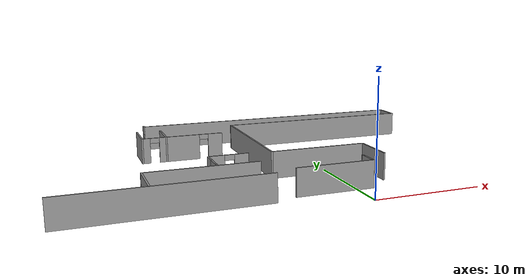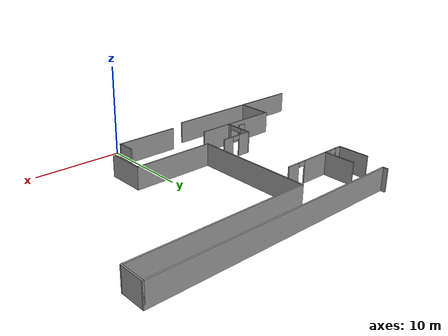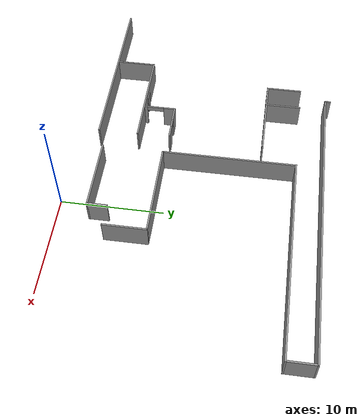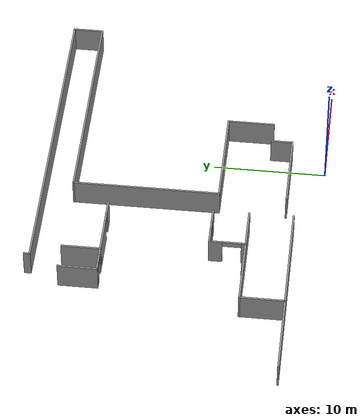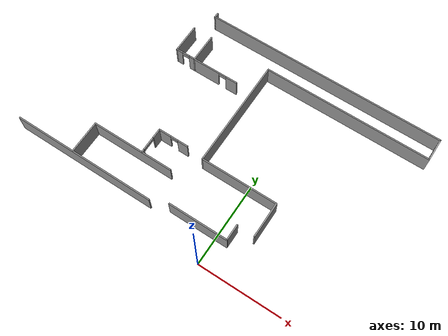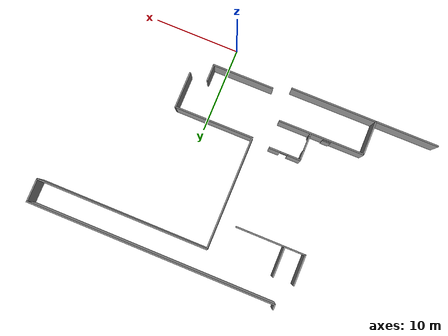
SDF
<sdf version="1.6">
 <model name="EDML">
  <link name="Door_14">
   <pose>-13.2894 6.35027 0 0 -0 0</pose>
   <visual name="Door_14_Visual">
    <pose>0 0 1 0 -0 0</pose>
    <geometry><box><size>0.9 0.17 2</size></box></geometry>
    <material>
     <script><uri>file://media/materials/scripts/gazebo.material</uri><name>Gazebo/Grey</name></script>
     <ambient>0.3 0.3 0.3 1</ambient>
     <diffuse>0.7 0.7 0.7 1</diffuse>
     <specular>0.01 0.01 0.01 1</specular>
     <emissive>0 0 0 1</emissive>
    </material>
   </visual>
   <collision name="Door_14_Collision">
    <pose>0 0 1 0 -0 0</pose>
    <geometry><box><size>0.9 0.17 2</size></box></geometry>
    <surface>
     <friction>
      <ode><mu>1</mu><mu2>1</mu2><fdir1>0 0 0</fdir1><slip1>0</slip1><slip2>0</slip2></ode>
      <torsional>
       <coefficient>1</coefficient>
       <patch_radius>0</patch_radius>
       <surface_radius>0</surface_radius>
       <use_patch_radius>1</use_patch_radius>
       <ode><slip>0</slip></ode>
      </torsional>
     </friction>
     <bounce><restitution_coefficient>0</restitution_coefficient><threshold>1e+06</threshold></bounce>
     <contact>
      <collide_without_contact>0</collide_without_contact>
      <collide_without_contact_bitmask>1</collide_without_contact_bitmask>
      <collide_bitmask>1</collide_bitmask>
      <ode>
       <soft_cfm>0</soft_cfm>
       <soft_erp>0.2</soft_erp>
       <kp>1e+13</kp>
       <kd>1</kd>
       <max_vel>0.01</max_vel>
       <min_depth>0</min_depth>
      </ode>
      <bullet>
       <split_impulse>1</split_impulse>
       <split_impulse_penetration_threshold>-0.01</split_impulse_penetration_threshold>
       <soft_cfm>0</soft_cfm>
       <soft_erp>0.2</soft_erp>
       <kp>1e+13</kp>
       <kd>1</kd>
      </bullet>
     </contact>
    </surface>
   </collision>
  </link>
  <link name="Wall_103">
   <pose>-13.181 20.4654 0 0 0 -1.5708</pose>
   <visual name="Wall_103_Visual">
    <pose>0 0 1.25 0 -0 0</pose>
    <geometry><box><size>3.539 0.15 2.5</size></box></geometry>
    <material>
     <script><uri>file://media/materials/scripts/gazebo.material</uri><name>Gazebo/Grey</name></script>
     <ambient>1 1 1 1</ambient>
     <diffuse>0.7 0.7 0.7 1</diffuse>
     <specular>0.01 0.01 0.01 1</specular>
     <emissive>0 0 0 1</emissive>
    </material>
   </visual>
   <collision name="Wall_103_Collision">
    <pose>0 0 1.25 0 -0 0</pose>
    <geometry><box><size>3.539 0.15 2.5</size></box></geometry>
    <surface>
     <friction>
      <ode><mu>1</mu><mu2>1</mu2><fdir1>0 0 0</fdir1><slip1>0</slip1><slip2>0</slip2></ode>
      <torsional>
       <coefficient>1</coefficient>
       <patch_radius>0</patch_radius>
       <surface_radius>0</surface_radius>
       <use_patch_radius>1</use_patch_radius>
       <ode><slip>0</slip></ode>
      </torsional>
     </friction>
     <bounce><restitution_coefficient>0</restitution_coefficient><threshold>1e+06</threshold></bounce>
     <contact>
      <collide_without_contact>0</collide_without_contact>
      <collide_without_contact_bitmask>1</collide_without_contact_bitmask>
      <collide_bitmask>1</collide_bitmask>
      <ode>
       <soft_cfm>0</soft_cfm>
       <soft_erp>0.2</soft_erp>
       <kp>1e+13</kp>
       <kd>1</kd>
       <max_vel>0.01</max_vel>
       <min_depth>0</min_depth>
      </ode>
      <bullet>
       <split_impulse>1</split_impulse>
       <split_impulse_penetration_threshold>-0.01</split_impulse_penetration_threshold>
       <soft_cfm>0</soft_cfm>
       <soft_erp>0.2</soft_erp>
       <kp>1e+13</kp>
       <kd>1</kd>
      </bullet>
     </contact>
    </surface>
   </collision>
  </link>
  <link name="Wall_105">
   <pose>-11.568 18.7709 0 0 -0 3.14159</pose>
   <visual name="Wall_105_Visual_0">
    <pose>-3.3243 0 1.25 0 -0 0</pose>
    <geometry><box><size>1.44441 0.15 2.5</size></box></geometry>
    <material>
     <script><uri>file://media/materials/scripts/gazebo.material</uri><name>Gazebo/Grey</name></script>
     <ambient>1 1 1 1</ambient>
     <diffuse>0.7 0.7 0.7 1</diffuse>
     <specular>0.01 0.01 0.01 1</specular>
     <emissive>0 0 0 1</emissive>
    </material>
   </visual>
   <visual name="Wall_105_Visual_1">
    <pose>0.305332 0 1.25 0 -0 0</pose>
    <geometry><box><size>4.01485 0.15 2.5</size></box></geometry>
    <material>
     <script><uri>file://media/materials/scripts/gazebo.material</uri><name>Gazebo/Grey</name></script>
     <ambient>1 1 1 1</ambient>
     <diffuse>0.7 0.7 0.7 1</diffuse>
     <specular>0.01 0.01 0.01 1</specular>
     <emissive>0 0 0 1</emissive>
    </material>
   </visual>
   <visual name="Wall_105_Visual_2">
    <pose>3.62963 0 1.25 0 -0 0</pose>
    <geometry><box><size>0.833746 0.15 2.5</size></box></geometry>
    <material>
     <script><uri>file://media/materials/scripts/gazebo.material</uri><name>Gazebo/Grey</name></script>
     <ambient>1 1 1 1</ambient>
     <diffuse>0.7 0.7 0.7 1</diffuse>
     <specular>0.01 0.01 0.01 1</specular>
     <emissive>0 0 0 1</emissive>
    </material>
   </visual>
   <visual name="Wall_105_Visual_3">
    <pose>-2.15209 0 2.25 0 -0 0</pose>
    <geometry><box><size>0.9 0.15 0.5</size></box></geometry>
    <material>
     <script><uri>file://media/materials/scripts/gazebo.material</uri><name>Gazebo/Grey</name></script>
     <ambient>1 1 1 1</ambient>
     <diffuse>0.7 0.7 0.7 1</diffuse>
     <specular>0.01 0.01 0.01 1</specular>
     <emissive>0 0 0 1</emissive>
    </material>
   </visual>
   <visual name="Wall_105_Visual_4">
    <pose>2.76275 0 2.25 0 -0 0</pose>
    <geometry><box><size>0.9 0.15 0.5</size></box></geometry>
    <material>
     <script><uri>file://media/materials/scripts/gazebo.material</uri><name>Gazebo/Grey</name></script>
     <ambient>1 1 1 1</ambient>
     <diffuse>0.7 0.7 0.7 1</diffuse>
     <specular>0.01 0.01 0.01 1</specular>
     <emissive>0 0 0 1</emissive>
    </material>
   </visual>
   <collision name="Wall_105_Collision_0">
    <pose>-3.3243 0 1.25 0 -0 0</pose>
    <geometry><box><size>1.44441 0.15 2.5</size></box></geometry>
    <surface>
     <friction>
      <ode><mu>1</mu><mu2>1</mu2><fdir1>0 0 0</fdir1><slip1>0</slip1><slip2>0</slip2></ode>
      <torsional>
       <coefficient>1</coefficient>
       <patch_radius>0</patch_radius>
       <surface_radius>0</surface_radius>
       <use_patch_radius>1</use_patch_radius>
       <ode><slip>0</slip></ode>
      </torsional>
     </friction>
     <bounce><restitution_coefficient>0</restitution_coefficient><threshold>1e+06</threshold></bounce>
     <contact>
      <collide_without_contact>0</collide_without_contact>
      <collide_without_contact_bitmask>1</collide_without_contact_bitmask>
      <collide_bitmask>1</collide_bitmask>
      <ode>
       <soft_cfm>0</soft_cfm>
       <soft_erp>0.2</soft_erp>
       <kp>1e+13</kp>
       <kd>1</kd>
       <max_vel>0.01</max_vel>
       <min_depth>0</min_depth>
      </ode>
      <bullet>
       <split_impulse>1</split_impulse>
       <split_impulse_penetration_threshold>-0.01</split_impulse_penetration_threshold>
       <soft_cfm>0</soft_cfm>
       <soft_erp>0.2</soft_erp>
       <kp>1e+13</kp>
       <kd>1</kd>
      </bullet>
     </contact>
    </surface>
   </collision>
   <collision name="Wall_105_Collision_1">
    <pose>0.305332 0 1.25 0 -0 0</pose>
    <geometry><box><size>4.01485 0.15 2.5</size></box></geometry>
    <surface>
     <friction>
      <ode><mu>1</mu><mu2>1</mu2><fdir1>0 0 0</fdir1><slip1>0</slip1><slip2>0</slip2></ode>
      <torsional>
       <coefficient>1</coefficient>
       <patch_radius>0</patch_radius>
       <surface_radius>0</surface_radius>
       <use_patch_radius>1</use_patch_radius>
       <ode><slip>0</slip></ode>
      </torsional>
     </friction>
     <bounce><restitution_coefficient>0</restitution_coefficient><threshold>1e+06</threshold></bounce>
     <contact>
      <collide_without_contact>0</collide_without_contact>
      <collide_without_contact_bitmask>1</collide_without_contact_bitmask>
      <collide_bitmask>1</collide_bitmask>
      <ode>
       <soft_cfm>0</soft_cfm>
       <soft_erp>0.2</soft_erp>
       <kp>1e+13</kp>
       <kd>1</kd>
       <max_vel>0.01</max_vel>
       <min_depth>0</min_depth>
      </ode>
      <bullet>
       <split_impulse>1</split_impulse>
       <split_impulse_penetration_threshold>-0.01</split_impulse_penetration_threshold>
       <soft_cfm>0</soft_cfm>
       <soft_erp>0.2</soft_erp>
       <kp>1e+13</kp>
       <kd>1</kd>
      </bullet>
     </contact>
    </surface>
   </collision>
   <collision name="Wall_105_Collision_2">
    <pose>3.62963 0 1.25 0 -0 0</pose>
    <geometry><box><size>0.833746 0.15 2.5</size></box></geometry>
    <surface>
     <friction>
      <ode><mu>1</mu><mu2>1</mu2><fdir1>0 0 0</fdir1><slip1>0</slip1><slip2>0</slip2></ode>
      <torsional>
       <coefficient>1</coefficient>
       <patch_radius>0</patch_radius>
       <surface_radius>0</surface_radius>
       <use_patch_radius>1</use_patch_radius>
       <ode><slip>0</slip></ode>
      </torsional>
     </friction>
     <bounce><restitution_coefficient>0</restitution_coefficient><threshold>1e+06</threshold></bounce>
     <contact>
      <collide_without_contact>0</collide_without_contact>
      <collide_without_contact_bitmask>1</collide_without_contact_bitmask>
      <collide_bitmask>1</collide_bitmask>
      <ode>
       <soft_cfm>0</soft_cfm>
       <soft_erp>0.2</soft_erp>
       <kp>1e+13</kp>
       <kd>1</kd>
       <max_vel>0.01</max_vel>
       <min_depth>0</min_depth>
      </ode>
      <bullet>
       <split_impulse>1</split_impulse>
       <split_impulse_penetration_threshold>-0.01</split_impulse_penetration_threshold>
       <soft_cfm>0</soft_cfm>
       <soft_erp>0.2</soft_erp>
       <kp>1e+13</kp>
       <kd>1</kd>
      </bullet>
     </contact>
    </surface>
   </collision>
   <collision name="Wall_105_Collision_4">
    <pose>2.76275 0 2.25 0 -0 0</pose>
    <geometry><box><size>0.9 0.15 0.5</size></box></geometry>
    <surface>
     <friction>
      <ode><mu>1</mu><mu2>1</mu2><fdir1>0 0 0</fdir1><slip1>0</slip1><slip2>0</slip2></ode>
      <torsional>
       <coefficient>1</coefficient>
       <patch_radius>0</patch_radius>
       <surface_radius>0</surface_radius>
       <use_patch_radius>1</use_patch_radius>
       <ode><slip>0</slip></ode>
      </torsional>
     </friction>
     <bounce><restitution_coefficient>0</restitution_coefficient><threshold>1e+06</threshold></bounce>
     <contact>
      <collide_without_contact>0</collide_without_contact>
      <collide_without_contact_bitmask>1</collide_without_contact_bitmask>
      <collide_bitmask>1</collide_bitmask>
      <ode>
       <soft_cfm>0</soft_cfm>
       <soft_erp>0.2</soft_erp>
       <kp>1e+13</kp>
       <kd>1</kd>
       <max_vel>0.01</max_vel>
       <min_depth>0</min_depth>
      </ode>
      <bullet>
       <split_impulse>1</split_impulse>
       <split_impulse_penetration_threshold>-0.01</split_impulse_penetration_threshold>
       <soft_cfm>0</soft_cfm>
       <soft_erp>0.2</soft_erp>
       <kp>1e+13</kp>
       <kd>1</kd>
      </bullet>
     </contact>
    </surface>
   </collision>
   <collision name="Wall_105_Collision_3">
    <pose>-2.15209 0 2.25 0 -0 0</pose>
    <geometry><box><size>0.9 0.15 0.5</size></box></geometry>
    <surface>
     <friction>
      <ode><mu>1</mu><mu2>1</mu2><fdir1>0 0 0</fdir1><slip1>0</slip1><slip2>0</slip2></ode>
      <torsional>
       <coefficient>1</coefficient>
       <patch_radius>0</patch_radius>
       <surface_radius>0</surface_radius>
       <use_patch_radius>1</use_patch_radius>
       <ode><slip>0</slip></ode>
      </torsional>
     </friction>
     <bounce><restitution_coefficient>0</restitution_coefficient><threshold>1e+06</threshold></bounce>
     <contact>
      <collide_without_contact>0</collide_without_contact>
      <collide_without_contact_bitmask>1</collide_without_contact_bitmask>
      <collide_bitmask>1</collide_bitmask>
      <ode>
       <soft_cfm>0</soft_cfm>
       <soft_erp>0.2</soft_erp>
       <kp>1e+13</kp>
       <kd>1</kd>
       <max_vel>0.01</max_vel>
       <min_depth>0</min_depth>
      </ode>
      <bullet>
       <split_impulse>1</split_impulse>
       <split_impulse_penetration_threshold>-0.01</split_impulse_penetration_threshold>
       <soft_cfm>0</soft_cfm>
       <soft_erp>0.2</soft_erp>
       <kp>1e+13</kp>
       <kd>1</kd>
      </bullet>
     </contact>
    </surface>
   </collision>
  </link>
  <link name="Wall_148">
   <pose>-12.566 6.25695 0 0 -0 3.14159</pose>
   <visual name="Wall_148_Visual">
    <pose>0 0 1.25 0 -0 0</pose>
    <geometry><box><size>9.993 0.15 2.5</size></box></geometry>
    <material>
     <script><uri>file://media/materials/scripts/gazebo.material</uri><name>Gazebo/Grey</name></script>
     <ambient>1 1 1 1</ambient>
     <diffuse>0.7 0.7 0.7 1</diffuse>
     <specular>0.01 0.01 0.01 1</specular>
     <emissive>0 0 0 1</emissive>
    </material>
   </visual>
   <collision name="Wall_148_Collision">
    <pose>0 0 1.25 0 -0 0</pose>
    <geometry><box><size>9.993 0.15 2.5</size></box></geometry>
    <surface>
     <friction>
      <ode><mu>1</mu><mu2>1</mu2><fdir1>0 0 0</fdir1><slip1>0</slip1><slip2>0</slip2></ode>
      <torsional>
       <coefficient>1</coefficient>
       <patch_radius>0</patch_radius>
       <surface_radius>0</surface_radius>
       <use_patch_radius>1</use_patch_radius>
       <ode><slip>0</slip></ode>
      </torsional>
     </friction>
     <bounce><restitution_coefficient>0</restitution_coefficient><threshold>1e+06</threshold></bounce>
     <contact>
      <collide_without_contact>0</collide_without_contact>
      <collide_without_contact_bitmask>1</collide_without_contact_bitmask>
      <collide_bitmask>1</collide_bitmask>
      <ode>
       <soft_cfm>0</soft_cfm>
       <soft_erp>0.2</soft_erp>
       <kp>1e+13</kp>
       <kd>1</kd>
       <max_vel>0.01</max_vel>
       <min_depth>0</min_depth>
      </ode>
      <bullet>
       <split_impulse>1</split_impulse>
       <split_impulse_penetration_threshold>-0.01</split_impulse_penetration_threshold>
       <soft_cfm>0</soft_cfm>
       <soft_erp>0.2</soft_erp>
       <kp>1e+13</kp>
       <kd>1</kd>
      </bullet>
     </contact>
    </surface>
   </collision>
  </link>
  <link name="Wall_150">
   <pose>-17.4875 4.33195 0 0 0 -1.5708</pose>
   <visual name="Wall_150_Visual">
    <pose>0 0 1.25 0 -0 0</pose>
    <geometry><box><size>4 0.15 2.5</size></box></geometry>
    <material>
     <script><uri>file://media/materials/scripts/gazebo.material</uri><name>Gazebo/Grey</name></script>
     <ambient>1 1 1 1</ambient>
     <diffuse>0.7 0.7 0.7 1</diffuse>
     <specular>0.01 0.01 0.01 1</specular>
     <emissive>0 0 0 1</emissive>
    </material>
   </visual>
   <collision name="Wall_150_Collision">
    <pose>0 0 1.25 0 -0 0</pose>
    <geometry><box><size>4 0.15 2.5</size></box></geometry>
    <surface>
     <friction>
      <ode><mu>1</mu><mu2>1</mu2><fdir1>0 0 0</fdir1><slip1>0</slip1><slip2>0</slip2></ode>
      <torsional>
       <coefficient>1</coefficient>
       <patch_radius>0</patch_radius>
       <surface_radius>0</surface_radius>
       <use_patch_radius>1</use_patch_radius>
       <ode><slip>0</slip></ode>
      </torsional>
     </friction>
     <bounce><restitution_coefficient>0</restitution_coefficient><threshold>1e+06</threshold></bounce>
     <contact>
      <collide_without_contact>0</collide_without_contact>
      <collide_without_contact_bitmask>1</collide_without_contact_bitmask>
      <collide_bitmask>1</collide_bitmask>
      <ode>
       <soft_cfm>0</soft_cfm>
       <soft_erp>0.2</soft_erp>
       <kp>1e+13</kp>
       <kd>1</kd>
       <max_vel>0.01</max_vel>
       <min_depth>0</min_depth>
      </ode>
      <bullet>
       <split_impulse>1</split_impulse>
       <split_impulse_penetration_threshold>-0.01</split_impulse_penetration_threshold>
       <soft_cfm>0</soft_cfm>
       <soft_erp>0.2</soft_erp>
       <kp>1e+13</kp>
       <kd>1</kd>
      </bullet>
     </contact>
    </surface>
   </collision>
  </link>
  <link name="Wall_152">
   <pose>-11.3135 7.85145 0 0 -0 1.5708</pose>
   <visual name="Wall_152_Visual_0">
    <pose>-1.437 0 1.25 0 -0 0</pose>
    <geometry><box><size>0.464999 0.15 2.5</size></box></geometry>
    <material>
     <script><uri>file://media/materials/scripts/gazebo.material</uri><name>Gazebo/Grey</name></script>
     <ambient>1 1 1 1</ambient>
     <diffuse>0.7 0.7 0.7 1</diffuse>
     <specular>0.01 0.01 0.01 1</specular>
     <emissive>0 0 0 1</emissive>
    </material>
   </visual>
   <visual name="Wall_152_Visual_1">
    <pose>1.06 0 1.25 0 -0 0</pose>
    <geometry><box><size>1.219 0.15 2.5</size></box></geometry>
    <material>
     <script><uri>file://media/materials/scripts/gazebo.material</uri><name>Gazebo/Grey</name></script>
     <ambient>1 1 1 1</ambient>
     <diffuse>0.7 0.7 0.7 1</diffuse>
     <specular>0.01 0.01 0.01 1</specular>
     <emissive>0 0 0 1</emissive>
    </material>
   </visual>
   <visual name="Wall_152_Visual_2">
    <pose>-0.377001 0 2.25 0 -0 0</pose>
    <geometry><box><size>1.655 0.15 0.5</size></box></geometry>
    <material>
     <script><uri>file://media/materials/scripts/gazebo.material</uri><name>Gazebo/Grey</name></script>
     <ambient>1 1 1 1</ambient>
     <diffuse>0.7 0.7 0.7 1</diffuse>
     <specular>0.01 0.01 0.01 1</specular>
     <emissive>0 0 0 1</emissive>
    </material>
   </visual>
   <collision name="Wall_152_Collision_0">
    <pose>-1.437 0 1.25 0 -0 0</pose>
    <geometry><box><size>0.464999 0.15 2.5</size></box></geometry>
    <surface>
     <friction>
      <ode><mu>1</mu><mu2>1</mu2><fdir1>0 0 0</fdir1><slip1>0</slip1><slip2>0</slip2></ode>
      <torsional>
       <coefficient>1</coefficient>
       <patch_radius>0</patch_radius>
       <surface_radius>0</surface_radius>
       <use_patch_radius>1</use_patch_radius>
       <ode><slip>0</slip></ode>
      </torsional>
     </friction>
     <bounce><restitution_coefficient>0</restitution_coefficient><threshold>1e+06</threshold></bounce>
     <contact>
      <collide_without_contact>0</collide_without_contact>
      <collide_without_contact_bitmask>1</collide_without_contact_bitmask>
      <collide_bitmask>1</collide_bitmask>
      <ode>
       <soft_cfm>0</soft_cfm>
       <soft_erp>0.2</soft_erp>
       <kp>1e+13</kp>
       <kd>1</kd>
       <max_vel>0.01</max_vel>
       <min_depth>0</min_depth>
      </ode>
      <bullet>
       <split_impulse>1</split_impulse>
       <split_impulse_penetration_threshold>-0.01</split_impulse_penetration_threshold>
       <soft_cfm>0</soft_cfm>
       <soft_erp>0.2</soft_erp>
       <kp>1e+13</kp>
       <kd>1</kd>
      </bullet>
     </contact>
    </surface>
   </collision>
   <collision name="Wall_152_Collision_1">
    <pose>1.06 0 1.25 0 -0 0</pose>
    <geometry><box><size>1.219 0.15 2.5</size></box></geometry>
    <surface>
     <friction>
      <ode><mu>1</mu><mu2>1</mu2><fdir1>0 0 0</fdir1><slip1>0</slip1><slip2>0</slip2></ode>
      <torsional>
       <coefficient>1</coefficient>
       <patch_radius>0</patch_radius>
       <surface_radius>0</surface_radius>
       <use_patch_radius>1</use_patch_radius>
       <ode><slip>0</slip></ode>
      </torsional>
     </friction>
     <bounce><restitution_coefficient>0</restitution_coefficient><threshold>1e+06</threshold></bounce>
     <contact>
      <collide_without_contact>0</collide_without_contact>
      <collide_without_contact_bitmask>1</collide_without_contact_bitmask>
      <collide_bitmask>1</collide_bitmask>
      <ode>
       <soft_cfm>0</soft_cfm>
       <soft_erp>0.2</soft_erp>
       <kp>1e+13</kp>
       <kd>1</kd>
       <max_vel>0.01</max_vel>
       <min_depth>0</min_depth>
      </ode>
      <bullet>
       <split_impulse>1</split_impulse>
       <split_impulse_penetration_threshold>-0.01</split_impulse_penetration_threshold>
       <soft_cfm>0</soft_cfm>
       <soft_erp>0.2</soft_erp>
       <kp>1e+13</kp>
       <kd>1</kd>
      </bullet>
     </contact>
    </surface>
   </collision>
   <collision name="Wall_152_Collision_2">
    <pose>-0.377001 0 2.25 0 -0 0</pose>
    <geometry><box><size>1.655 0.15 0.5</size></box></geometry>
    <surface>
     <friction>
      <ode><mu>1</mu><mu2>1</mu2><fdir1>0 0 0</fdir1><slip1>0</slip1><slip2>0</slip2></ode>
      <torsional>
       <coefficient>1</coefficient>
       <patch_radius>0</patch_radius>
       <surface_radius>0</surface_radius>
       <use_patch_radius>1</use_patch_radius>
       <ode><slip>0</slip></ode>
      </torsional>
     </friction>
     <bounce><restitution_coefficient>0</restitution_coefficient><threshold>1e+06</threshold></bounce>
     <contact>
      <collide_without_contact>0</collide_without_contact>
      <collide_without_contact_bitmask>1</collide_without_contact_bitmask>
      <collide_bitmask>1</collide_bitmask>
      <ode>
       <soft_cfm>0</soft_cfm>
       <soft_erp>0.2</soft_erp>
       <kp>1e+13</kp>
       <kd>1</kd>
       <max_vel>0.01</max_vel>
       <min_depth>0</min_depth>
      </ode>
      <bullet>
       <split_impulse>1</split_impulse>
       <split_impulse_penetration_threshold>-0.01</split_impulse_penetration_threshold>
       <soft_cfm>0</soft_cfm>
       <soft_erp>0.2</soft_erp>
       <kp>1e+13</kp>
       <kd>1</kd>
      </bullet>
     </contact>
    </surface>
   </collision>
  </link>
  <link name="Wall_154">
   <pose>-9.51348 9.44595 0 0 -0 0</pose>
   <visual name="Wall_154_Visual_0">
    <pose>-1.09506 0 1.25 0 -0 0</pose>
    <geometry><box><size>1.55988 0.15 2.5</size></box></geometry>
    <material>
     <script><uri>file://media/materials/scripts/gazebo.material</uri><name>Gazebo/Grey</name></script>
     <ambient>1 1 1 1</ambient>
     <diffuse>0.7 0.7 0.7 1</diffuse>
     <specular>0.01 0.01 0.01 1</specular>
     <emissive>0 0 0 1</emissive>
    </material>
   </visual>
   <visual name="Wall_154_Visual_1">
    <pose>1.22994 0 1.25 0 -0 0</pose>
    <geometry><box><size>1.29012 0.15 2.5</size></box></geometry>
    <material>
     <script><uri>file://media/materials/scripts/gazebo.material</uri><name>Gazebo/Grey</name></script>
     <ambient>1 1 1 1</ambient>
     <diffuse>0.7 0.7 0.7 1</diffuse>
     <specular>0.01 0.01 0.01 1</specular>
     <emissive>0 0 0 1</emissive>
    </material>
   </visual>
   <visual name="Wall_154_Visual_2">
    <pose>0.134882 0 2.25 0 -0 0</pose>
    <geometry><box><size>0.9 0.15 0.5</size></box></geometry>
    <material>
     <script><uri>file://media/materials/scripts/gazebo.material</uri><name>Gazebo/Grey</name></script>
     <ambient>1 1 1 1</ambient>
     <diffuse>0.7 0.7 0.7 1</diffuse>
     <specular>0.01 0.01 0.01 1</specular>
     <emissive>0 0 0 1</emissive>
    </material>
   </visual>
   <collision name="Wall_154_Collision_0">
    <pose>-1.09506 0 1.25 0 -0 0</pose>
    <geometry><box><size>1.55988 0.15 2.5</size></box></geometry>
    <surface>
     <friction>
      <ode><mu>1</mu><mu2>1</mu2><fdir1>0 0 0</fdir1><slip1>0</slip1><slip2>0</slip2></ode>
      <torsional>
       <coefficient>1</coefficient>
       <patch_radius>0</patch_radius>
       <surface_radius>0</surface_radius>
       <use_patch_radius>1</use_patch_radius>
       <ode><slip>0</slip></ode>
      </torsional>
     </friction>
     <bounce><restitution_coefficient>0</restitution_coefficient><threshold>1e+06</threshold></bounce>
     <contact>
      <collide_without_contact>0</collide_without_contact>
      <collide_without_contact_bitmask>1</collide_without_contact_bitmask>
      <collide_bitmask>1</collide_bitmask>
      <ode>
       <soft_cfm>0</soft_cfm>
       <soft_erp>0.2</soft_erp>
       <kp>1e+13</kp>
       <kd>1</kd>
       <max_vel>0.01</max_vel>
       <min_depth>0</min_depth>
      </ode>
      <bullet>
       <split_impulse>1</split_impulse>
       <split_impulse_penetration_threshold>-0.01</split_impulse_penetration_threshold>
       <soft_cfm>0</soft_cfm>
       <soft_erp>0.2</soft_erp>
       <kp>1e+13</kp>
       <kd>1</kd>
      </bullet>
     </contact>
    </surface>
   </collision>
   <collision name="Wall_154_Collision_1">
    <pose>1.22994 0 1.25 0 -0 0</pose>
    <geometry><box><size>1.29012 0.15 2.5</size></box></geometry>
    <surface>
     <friction>
      <ode><mu>1</mu><mu2>1</mu2><fdir1>0 0 0</fdir1><slip1>0</slip1><slip2>0</slip2></ode>
      <torsional>
       <coefficient>1</coefficient>
       <patch_radius>0</patch_radius>
       <surface_radius>0</surface_radius>
       <use_patch_radius>1</use_patch_radius>
       <ode><slip>0</slip></ode>
      </torsional>
     </friction>
     <bounce><restitution_coefficient>0</restitution_coefficient><threshold>1e+06</threshold></bounce>
     <contact>
      <collide_without_contact>0</collide_without_contact>
      <collide_without_contact_bitmask>1</collide_without_contact_bitmask>
      <collide_bitmask>1</collide_bitmask>
      <ode>
       <soft_cfm>0</soft_cfm>
       <soft_erp>0.2</soft_erp>
       <kp>1e+13</kp>
       <kd>1</kd>
       <max_vel>0.01</max_vel>
       <min_depth>0</min_depth>
      </ode>
      <bullet>
       <split_impulse>1</split_impulse>
       <split_impulse_penetration_threshold>-0.01</split_impulse_penetration_threshold>
       <soft_cfm>0</soft_cfm>
       <soft_erp>0.2</soft_erp>
       <kp>1e+13</kp>
       <kd>1</kd>
      </bullet>
     </contact>
    </surface>
   </collision>
   <collision name="Wall_154_Collision_2">
    <pose>0.134882 0 2.25 0 -0 0</pose>
    <geometry><box><size>0.9 0.15 0.5</size></box></geometry>
    <surface>
     <friction>
      <ode><mu>1</mu><mu2>1</mu2><fdir1>0 0 0</fdir1><slip1>0</slip1><slip2>0</slip2></ode>
      <torsional>
       <coefficient>1</coefficient>
       <patch_radius>0</patch_radius>
       <surface_radius>0</surface_radius>
       <use_patch_radius>1</use_patch_radius>
       <ode><slip>0</slip></ode>
      </torsional>
     </friction>
     <bounce><restitution_coefficient>0</restitution_coefficient><threshold>1e+06</threshold></bounce>
     <contact>
      <collide_without_contact>0</collide_without_contact>
      <collide_without_contact_bitmask>1</collide_without_contact_bitmask>
      <collide_bitmask>1</collide_bitmask>
      <ode>
       <soft_cfm>0</soft_cfm>
       <soft_erp>0.2</soft_erp>
       <kp>1e+13</kp>
       <kd>1</kd>
       <max_vel>0.01</max_vel>
       <min_depth>0</min_depth>
      </ode>
      <bullet>
       <split_impulse>1</split_impulse>
       <split_impulse_penetration_threshold>-0.01</split_impulse_penetration_threshold>
       <soft_cfm>0</soft_cfm>
       <soft_erp>0.2</soft_erp>
       <kp>1e+13</kp>
       <kd>1</kd>
      </bullet>
     </contact>
    </surface>
   </collision>
  </link>
  <link name="Wall_160">
   <pose>-0.946484 9.13295 0 0 -0 0</pose>
   <visual name="Wall_160_Visual">
    <pose>0 0 1.25 0 -0 0</pose>
    <geometry><box><size>9.23 0.15 2.5</size></box></geometry>
    <material>
     <script><uri>file://media/materials/scripts/gazebo.material</uri><name>Gazebo/Grey</name></script>
     <ambient>1 1 1 1</ambient>
     <diffuse>0.7 0.7 0.7 1</diffuse>
     <specular>0.01 0.01 0.01 1</specular>
     <emissive>0 0 0 1</emissive>
    </material>
   </visual>
   <collision name="Wall_160_Collision">
    <pose>0 0 1.25 0 -0 0</pose>
    <geometry><box><size>9.23 0.15 2.5</size></box></geometry>
    <surface>
     <friction>
      <ode><mu>1</mu><mu2>1</mu2><fdir1>0 0 0</fdir1><slip1>0</slip1><slip2>0</slip2></ode>
      <torsional>
       <coefficient>1</coefficient>
       <patch_radius>0</patch_radius>
       <surface_radius>0</surface_radius>
       <use_patch_radius>1</use_patch_radius>
       <ode><slip>0</slip></ode>
      </torsional>
     </friction>
     <bounce><restitution_coefficient>0</restitution_coefficient><threshold>1e+06</threshold></bounce>
     <contact>
      <collide_without_contact>0</collide_without_contact>
      <collide_without_contact_bitmask>1</collide_without_contact_bitmask>
      <collide_bitmask>1</collide_bitmask>
      <ode>
       <soft_cfm>0</soft_cfm>
       <soft_erp>0.2</soft_erp>
       <kp>1e+13</kp>
       <kd>1</kd>
       <max_vel>0.01</max_vel>
       <min_depth>0</min_depth>
      </ode>
      <bullet>
       <split_impulse>1</split_impulse>
       <split_impulse_penetration_threshold>-0.01</split_impulse_penetration_threshold>
       <soft_cfm>0</soft_cfm>
       <soft_erp>0.2</soft_erp>
       <kp>1e+13</kp>
       <kd>1</kd>
      </bullet>
     </contact>
    </surface>
   </collision>
  </link>
  <link name="Wall_161">
   <pose>3.59352 7.06695 0 0 0 -1.5708</pose>
   <visual name="Wall_161_Visual">
    <pose>0 0 1.25 0 -0 0</pose>
    <geometry><box><size>4.282 0.15 2.5</size></box></geometry>
    <material>
     <script><uri>file://media/materials/scripts/gazebo.material</uri><name>Gazebo/Grey</name></script>
     <ambient>1 1 1 1</ambient>
     <diffuse>0.7 0.7 0.7 1</diffuse>
     <specular>0.01 0.01 0.01 1</specular>
     <emissive>0 0 0 1</emissive>
    </material>
   </visual>
   <collision name="Wall_161_Collision">
    <pose>0 0 1.25 0 -0 0</pose>
    <geometry><box><size>4.282 0.15 2.5</size></box></geometry>
    <surface>
     <friction>
      <ode><mu>1</mu><mu2>1</mu2><fdir1>0 0 0</fdir1><slip1>0</slip1><slip2>0</slip2></ode>
      <torsional>
       <coefficient>1</coefficient>
       <patch_radius>0</patch_radius>
       <surface_radius>0</surface_radius>
       <use_patch_radius>1</use_patch_radius>
       <ode><slip>0</slip></ode>
      </torsional>
     </friction>
     <bounce><restitution_coefficient>0</restitution_coefficient><threshold>1e+06</threshold></bounce>
     <contact>
      <collide_without_contact>0</collide_without_contact>
      <collide_without_contact_bitmask>1</collide_without_contact_bitmask>
      <collide_bitmask>1</collide_bitmask>
      <ode>
       <soft_cfm>0</soft_cfm>
       <soft_erp>0.2</soft_erp>
       <kp>1e+13</kp>
       <kd>1</kd>
       <max_vel>0.01</max_vel>
       <min_depth>0</min_depth>
      </ode>
      <bullet>
       <split_impulse>1</split_impulse>
       <split_impulse_penetration_threshold>-0.01</split_impulse_penetration_threshold>
       <soft_cfm>0</soft_cfm>
       <soft_erp>0.2</soft_erp>
       <kp>1e+13</kp>
       <kd>1</kd>
      </bullet>
     </contact>
    </surface>
   </collision>
  </link>
  <link name="Wall_163">
   <pose>1.48552 4.06645 0 0 0 -1.5708</pose>
   <visual name="Wall_163_Visual">
    <pose>0 0 1.25 0 -0 0</pose>
    <geometry><box><size>2.019 0.15 2.5</size></box></geometry>
    <material>
     <script><uri>file://media/materials/scripts/gazebo.material</uri><name>Gazebo/Grey</name></script>
     <ambient>1 1 1 1</ambient>
     <diffuse>0.7 0.7 0.7 1</diffuse>
     <specular>0.01 0.01 0.01 1</specular>
     <emissive>0 0 0 1</emissive>
    </material>
   </visual>
   <collision name="Wall_163_Collision">
    <pose>0 0 1.25 0 -0 0</pose>
    <geometry><box><size>2.019 0.15 2.5</size></box></geometry>
    <surface>
     <friction>
      <ode><mu>1</mu><mu2>1</mu2><fdir1>0 0 0</fdir1><slip1>0</slip1><slip2>0</slip2></ode>
      <torsional>
       <coefficient>1</coefficient>
       <patch_radius>0</patch_radius>
       <surface_radius>0</surface_radius>
       <use_patch_radius>1</use_patch_radius>
       <ode><slip>0</slip></ode>
      </torsional>
     </friction>
     <bounce><restitution_coefficient>0</restitution_coefficient><threshold>1e+06</threshold></bounce>
     <contact>
      <collide_without_contact>0</collide_without_contact>
      <collide_without_contact_bitmask>1</collide_without_contact_bitmask>
      <collide_bitmask>1</collide_bitmask>
      <ode>
       <soft_cfm>0</soft_cfm>
       <soft_erp>0.2</soft_erp>
       <kp>1e+13</kp>
       <kd>1</kd>
       <max_vel>0.01</max_vel>
       <min_depth>0</min_depth>
      </ode>
      <bullet>
       <split_impulse>1</split_impulse>
       <split_impulse_penetration_threshold>-0.01</split_impulse_penetration_threshold>
       <soft_cfm>0</soft_cfm>
       <soft_erp>0.2</soft_erp>
       <kp>1e+13</kp>
       <kd>1</kd>
      </bullet>
     </contact>
    </surface>
   </collision>
  </link>
  <link name="Wall_164">
   <pose>-2.02798 3.13195 0 0 -0 3.14159</pose>
   <visual name="Wall_164_Visual">
    <pose>0 0 1.25 0 -0 0</pose>
    <geometry><box><size>7.177 0.15 2.5</size></box></geometry>
    <material>
     <script><uri>file://media/materials/scripts/gazebo.material</uri><name>Gazebo/Grey</name></script>
     <ambient>1 1 1 1</ambient>
     <diffuse>0.7 0.7 0.7 1</diffuse>
     <specular>0.01 0.01 0.01 1</specular>
     <emissive>0 0 0 1</emissive>
    </material>
   </visual>
   <collision name="Wall_164_Collision">
    <pose>0 0 1.25 0 -0 0</pose>
    <geometry><box><size>7.177 0.15 2.5</size></box></geometry>
    <surface>
     <friction>
      <ode><mu>1</mu><mu2>1</mu2><fdir1>0 0 0</fdir1><slip1>0</slip1><slip2>0</slip2></ode>
      <torsional>
       <coefficient>1</coefficient>
       <patch_radius>0</patch_radius>
       <surface_radius>0</surface_radius>
       <use_patch_radius>1</use_patch_radius>
       <ode><slip>0</slip></ode>
      </torsional>
     </friction>
     <bounce><restitution_coefficient>0</restitution_coefficient><threshold>1e+06</threshold></bounce>
     <contact>
      <collide_without_contact>0</collide_without_contact>
      <collide_without_contact_bitmask>1</collide_without_contact_bitmask>
      <collide_bitmask>1</collide_bitmask>
      <ode>
       <soft_cfm>0</soft_cfm>
       <soft_erp>0.2</soft_erp>
       <kp>1e+13</kp>
       <kd>1</kd>
       <max_vel>0.01</max_vel>
       <min_depth>0</min_depth>
      </ode>
      <bullet>
       <split_impulse>1</split_impulse>
       <split_impulse_penetration_threshold>-0.01</split_impulse_penetration_threshold>
       <soft_cfm>0</soft_cfm>
       <soft_erp>0.2</soft_erp>
       <kp>1e+13</kp>
       <kd>1</kd>
      </bullet>
     </contact>
    </surface>
   </collision>
  </link>
  <link name="Wall_19">
   <pose>-14.4105 25.0329 0 0 0 -1.5708</pose>
   <visual name="Wall_19_Visual">
    <pose>0 0 1.25 0 -0 0</pose>
    <geometry><box><size>0.624 0.15 2.5</size></box></geometry>
    <material>
     <script><uri>file://media/materials/scripts/gazebo.material</uri><name>Gazebo/Grey</name></script>
     <ambient>1 1 1 1</ambient>
     <diffuse>0.7 0.7 0.7 1</diffuse>
     <specular>0.01 0.01 0.01 1</specular>
     <emissive>0 0 0 1</emissive>
    </material>
   </visual>
   <collision name="Wall_19_Collision">
    <pose>0 0 1.25 0 -0 0</pose>
    <geometry><box><size>0.624 0.15 2.5</size></box></geometry>
    <surface>
     <friction>
      <ode><mu>1</mu><mu2>1</mu2><fdir1>0 0 0</fdir1><slip1>0</slip1><slip2>0</slip2></ode>
      <torsional>
       <coefficient>1</coefficient>
       <patch_radius>0</patch_radius>
       <surface_radius>0</surface_radius>
       <use_patch_radius>1</use_patch_radius>
       <ode><slip>0</slip></ode>
      </torsional>
     </friction>
     <bounce><restitution_coefficient>0</restitution_coefficient><threshold>1e+06</threshold></bounce>
     <contact>
      <collide_without_contact>0</collide_without_contact>
      <collide_without_contact_bitmask>1</collide_without_contact_bitmask>
      <collide_bitmask>1</collide_bitmask>
      <ode>
       <soft_cfm>0</soft_cfm>
       <soft_erp>0.2</soft_erp>
       <kp>1e+13</kp>
       <kd>1</kd>
       <max_vel>0.01</max_vel>
       <min_depth>0</min_depth>
      </ode>
      <bullet>
       <split_impulse>1</split_impulse>
       <split_impulse_penetration_threshold>-0.01</split_impulse_penetration_threshold>
       <soft_cfm>0</soft_cfm>
       <soft_erp>0.2</soft_erp>
       <kp>1e+13</kp>
       <kd>1</kd>
      </bullet>
     </contact>
    </surface>
   </collision>
  </link>
  <link name="Wall_20">
   <pose>-0.015984 24.7959 0 0 -0 0</pose>
   <visual name="Wall_20_Visual">
    <pose>0 0 1.25 0 -0 0</pose>
    <geometry><box><size>28.939 0.15 2.5</size></box></geometry>
    <material>
     <script><uri>file://media/materials/scripts/gazebo.material</uri><name>Gazebo/Grey</name></script>
     <ambient>1 1 1 1</ambient>
     <diffuse>0.7 0.7 0.7 1</diffuse>
     <specular>0.01 0.01 0.01 1</specular>
     <emissive>0 0 0 1</emissive>
    </material>
   </visual>
   <collision name="Wall_20_Collision">
    <pose>0 0 1.25 0 -0 0</pose>
    <geometry><box><size>28.939 0.15 2.5</size></box></geometry>
    <surface>
     <friction>
      <ode><mu>1</mu><mu2>1</mu2><fdir1>0 0 0</fdir1><slip1>0</slip1><slip2>0</slip2></ode>
      <torsional>
       <coefficient>1</coefficient>
       <patch_radius>0</patch_radius>
       <surface_radius>0</surface_radius>
       <use_patch_radius>1</use_patch_radius>
       <ode><slip>0</slip></ode>
      </torsional>
     </friction>
     <bounce><restitution_coefficient>0</restitution_coefficient><threshold>1e+06</threshold></bounce>
     <contact>
      <collide_without_contact>0</collide_without_contact>
      <collide_without_contact_bitmask>1</collide_without_contact_bitmask>
      <collide_bitmask>1</collide_bitmask>
      <ode>
       <soft_cfm>0</soft_cfm>
       <soft_erp>0.2</soft_erp>
       <kp>1e+13</kp>
       <kd>1</kd>
       <max_vel>0.01</max_vel>
       <min_depth>0</min_depth>
      </ode>
      <bullet>
       <split_impulse>1</split_impulse>
       <split_impulse_penetration_threshold>-0.01</split_impulse_penetration_threshold>
       <soft_cfm>0</soft_cfm>
       <soft_erp>0.2</soft_erp>
       <kp>1e+13</kp>
       <kd>1</kd>
      </bullet>
     </contact>
    </surface>
   </collision>
  </link>
  <link name="Wall_21">
   <pose>14.3785 23.4779 0 0 0 -1.5708</pose>
   <visual name="Wall_21_Visual">
    <pose>0 0 1.25 0 -0 0</pose>
    <geometry><box><size>2.786 0.15 2.5</size></box></geometry>
    <material>
     <script><uri>file://media/materials/scripts/gazebo.material</uri><name>Gazebo/Grey</name></script>
     <ambient>1 1 1 1</ambient>
     <diffuse>0.7 0.7 0.7 1</diffuse>
     <specular>0.01 0.01 0.01 1</specular>
     <emissive>0 0 0 1</emissive>
    </material>
   </visual>
   <collision name="Wall_21_Collision">
    <pose>0 0 1.25 0 -0 0</pose>
    <geometry><box><size>2.786 0.15 2.5</size></box></geometry>
    <surface>
     <friction>
      <ode><mu>1</mu><mu2>1</mu2><fdir1>0 0 0</fdir1><slip1>0</slip1><slip2>0</slip2></ode>
      <torsional>
       <coefficient>1</coefficient>
       <patch_radius>0</patch_radius>
       <surface_radius>0</surface_radius>
       <use_patch_radius>1</use_patch_radius>
       <ode><slip>0</slip></ode>
      </torsional>
     </friction>
     <bounce><restitution_coefficient>0</restitution_coefficient><threshold>1e+06</threshold></bounce>
     <contact>
      <collide_without_contact>0</collide_without_contact>
      <collide_without_contact_bitmask>1</collide_without_contact_bitmask>
      <collide_bitmask>1</collide_bitmask>
      <ode>
       <soft_cfm>0</soft_cfm>
       <soft_erp>0.2</soft_erp>
       <kp>1e+13</kp>
       <kd>1</kd>
       <max_vel>0.01</max_vel>
       <min_depth>0</min_depth>
      </ode>
      <bullet>
       <split_impulse>1</split_impulse>
       <split_impulse_penetration_threshold>-0.01</split_impulse_penetration_threshold>
       <soft_cfm>0</soft_cfm>
       <soft_erp>0.2</soft_erp>
       <kp>1e+13</kp>
       <kd>1</kd>
      </bullet>
     </contact>
    </surface>
   </collision>
  </link>
  <link name="Wall_22">
   <pose>4.41852 22.1599 0 0 -0 3.14159</pose>
   <visual name="Wall_22_Visual">
    <pose>0 0 1.25 0 -0 0</pose>
    <geometry><box><size>20.07 0.15 2.5</size></box></geometry>
    <material>
     <script><uri>file://media/materials/scripts/gazebo.material</uri><name>Gazebo/Grey</name></script>
     <ambient>1 1 1 1</ambient>
     <diffuse>0.7 0.7 0.7 1</diffuse>
     <specular>0.01 0.01 0.01 1</specular>
     <emissive>0 0 0 1</emissive>
    </material>
   </visual>
   <collision name="Wall_22_Collision">
    <pose>0 0 1.25 0 -0 0</pose>
    <geometry><box><size>20.07 0.15 2.5</size></box></geometry>
    <surface>
     <friction>
      <ode><mu>1</mu><mu2>1</mu2><fdir1>0 0 0</fdir1><slip1>0</slip1><slip2>0</slip2></ode>
      <torsional>
       <coefficient>1</coefficient>
       <patch_radius>0</patch_radius>
       <surface_radius>0</surface_radius>
       <use_patch_radius>1</use_patch_radius>
       <ode><slip>0</slip></ode>
      </torsional>
     </friction>
     <bounce><restitution_coefficient>0</restitution_coefficient><threshold>1e+06</threshold></bounce>
     <contact>
      <collide_without_contact>0</collide_without_contact>
      <collide_without_contact_bitmask>1</collide_without_contact_bitmask>
      <collide_bitmask>1</collide_bitmask>
      <ode>
       <soft_cfm>0</soft_cfm>
       <soft_erp>0.2</soft_erp>
       <kp>1e+13</kp>
       <kd>1</kd>
       <max_vel>0.01</max_vel>
       <min_depth>0</min_depth>
      </ode>
      <bullet>
       <split_impulse>1</split_impulse>
       <split_impulse_penetration_threshold>-0.01</split_impulse_penetration_threshold>
       <soft_cfm>0</soft_cfm>
       <soft_erp>0.2</soft_erp>
       <kp>1e+13</kp>
       <kd>1</kd>
      </bullet>
     </contact>
    </surface>
   </collision>
  </link>
  <link name="Wall_23">
   <pose>-5.54148 15.6464 0 0 0 -1.5708</pose>
   <visual name="Wall_23_Visual">
    <pose>0 0 1.25 0 -0 0</pose>
    <geometry><box><size>13.177 0.15 2.5</size></box></geometry>
    <material>
     <script><uri>file://media/materials/scripts/gazebo.material</uri><name>Gazebo/Grey</name></script>
     <ambient>1 1 1 1</ambient>
     <diffuse>0.7 0.7 0.7 1</diffuse>
     <specular>0.01 0.01 0.01 1</specular>
     <emissive>0 0 0 1</emissive>
    </material>
   </visual>
   <collision name="Wall_23_Collision">
    <pose>0 0 1.25 0 -0 0</pose>
    <geometry><box><size>13.177 0.15 2.5</size></box></geometry>
    <surface>
     <friction>
      <ode><mu>1</mu><mu2>1</mu2><fdir1>0 0 0</fdir1><slip1>0</slip1><slip2>0</slip2></ode>
      <torsional>
       <coefficient>1</coefficient>
       <patch_radius>0</patch_radius>
       <surface_radius>0</surface_radius>
       <use_patch_radius>1</use_patch_radius>
       <ode><slip>0</slip></ode>
      </torsional>
     </friction>
     <bounce><restitution_coefficient>0</restitution_coefficient><threshold>1e+06</threshold></bounce>
     <contact>
      <collide_without_contact>0</collide_without_contact>
      <collide_without_contact_bitmask>1</collide_without_contact_bitmask>
      <collide_bitmask>1</collide_bitmask>
      <ode>
       <soft_cfm>0</soft_cfm>
       <soft_erp>0.2</soft_erp>
       <kp>1e+13</kp>
       <kd>1</kd>
       <max_vel>0.01</max_vel>
       <min_depth>0</min_depth>
      </ode>
      <bullet>
       <split_impulse>1</split_impulse>
       <split_impulse_penetration_threshold>-0.01</split_impulse_penetration_threshold>
       <soft_cfm>0</soft_cfm>
       <soft_erp>0.2</soft_erp>
       <kp>1e+13</kp>
       <kd>1</kd>
      </bullet>
     </contact>
    </surface>
   </collision>
  </link>
  <link name="Wall_87">
   <pose>-16.1365 2.34295 0 0 -0 0</pose>
   <visual name="Wall_87_Visual">
    <pose>0 0 1.25 0 -0 0</pose>
    <geometry><box><size>17.25 0.15 2.5</size></box></geometry>
    <material>
     <script><uri>file://media/materials/scripts/gazebo.material</uri><name>Gazebo/Grey</name></script>
     <ambient>1 1 1 1</ambient>
     <diffuse>0.7 0.7 0.7 1</diffuse>
     <specular>0.01 0.01 0.01 1</specular>
     <emissive>0 0 0 1</emissive>
    </material>
   </visual>
   <collision name="Wall_87_Collision">
    <pose>0 0 1.25 0 -0 0</pose>
    <geometry><box><size>17.25 0.15 2.5</size></box></geometry>
    <surface>
     <friction>
      <ode><mu>1</mu><mu2>1</mu2><fdir1>0 0 0</fdir1><slip1>0</slip1><slip2>0</slip2></ode>
      <torsional>
       <coefficient>1</coefficient>
       <patch_radius>0</patch_radius>
       <surface_radius>0</surface_radius>
       <use_patch_radius>1</use_patch_radius>
       <ode><slip>0</slip></ode>
      </torsional>
     </friction>
     <bounce><restitution_coefficient>0</restitution_coefficient><threshold>1e+06</threshold></bounce>
     <contact>
      <collide_without_contact>0</collide_without_contact>
      <collide_without_contact_bitmask>1</collide_without_contact_bitmask>
      <collide_bitmask>1</collide_bitmask>
      <ode>
       <soft_cfm>0</soft_cfm>
       <soft_erp>0.2</soft_erp>
       <kp>1e+13</kp>
       <kd>1</kd>
       <max_vel>0.01</max_vel>
       <min_depth>0</min_depth>
      </ode>
      <bullet>
       <split_impulse>1</split_impulse>
       <split_impulse_penetration_threshold>-0.01</split_impulse_penetration_threshold>
       <soft_cfm>0</soft_cfm>
       <soft_erp>0.2</soft_erp>
       <kp>1e+13</kp>
       <kd>1</kd>
      </bullet>
     </contact>
    </surface>
   </collision>
  </link>
  <link name="Wall_97">
   <pose>-15.5405 20.4654 0 0 0 -1.5708</pose>
   <visual name="Wall_97_Visual">
    <pose>0 0 1.25 0 -0 0</pose>
    <geometry><box><size>3.539 0.15 2.5</size></box></geometry>
    <material>
     <script><uri>file://media/materials/scripts/gazebo.material</uri><name>Gazebo/Grey</name></script>
     <ambient>1 1 1 1</ambient>
     <diffuse>0.7 0.7 0.7 1</diffuse>
     <specular>0.01 0.01 0.01 1</specular>
     <emissive>0 0 0 1</emissive>
    </material>
   </visual>
   <collision name="Wall_97_Collision">
    <pose>0 0 1.25 0 -0 0</pose>
    <geometry><box><size>3.539 0.15 2.5</size></box></geometry>
    <surface>
     <friction>
      <ode><mu>1</mu><mu2>1</mu2><fdir1>0 0 0</fdir1><slip1>0</slip1><slip2>0</slip2></ode>
      <torsional>
       <coefficient>1</coefficient>
       <patch_radius>0</patch_radius>
       <surface_radius>0</surface_radius>
       <use_patch_radius>1</use_patch_radius>
       <ode><slip>0</slip></ode>
      </torsional>
     </friction>
     <bounce><restitution_coefficient>0</restitution_coefficient><threshold>1e+06</threshold></bounce>
     <contact>
      <collide_without_contact>0</collide_without_contact>
      <collide_without_contact_bitmask>1</collide_without_contact_bitmask>
      <collide_bitmask>1</collide_bitmask>
      <ode>
       <soft_cfm>0</soft_cfm>
       <soft_erp>0.2</soft_erp>
       <kp>1e+13</kp>
       <kd>1</kd>
       <max_vel>0.01</max_vel>
       <min_depth>0</min_depth>
      </ode>
      <bullet>
       <split_impulse>1</split_impulse>
       <split_impulse_penetration_threshold>-0.01</split_impulse_penetration_threshold>
       <soft_cfm>0</soft_cfm>
       <soft_erp>0.2</soft_erp>
       <kp>1e+13</kp>
       <kd>1</kd>
      </bullet>
     </contact>
    </surface>
   </collision>
  </link>
  <static>1</static>
 </model>
</sdf>
